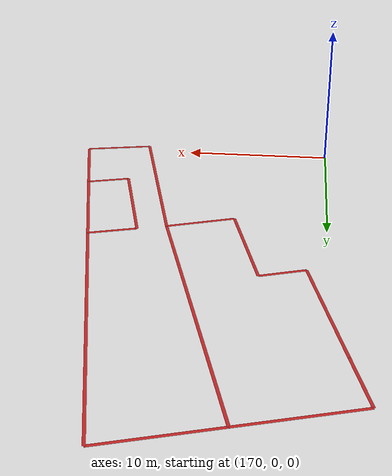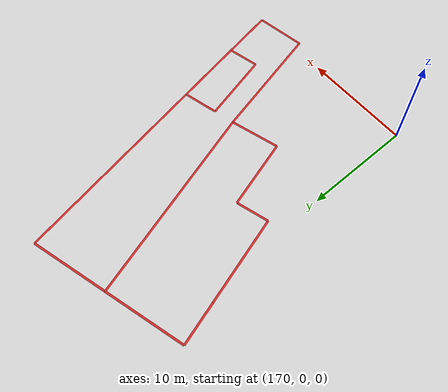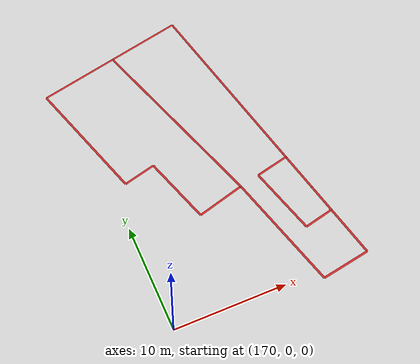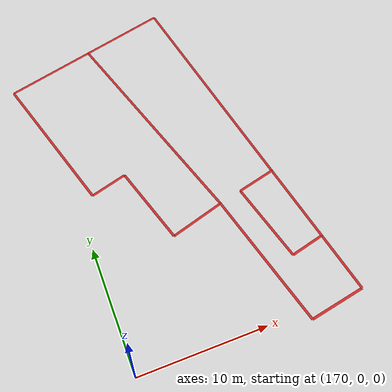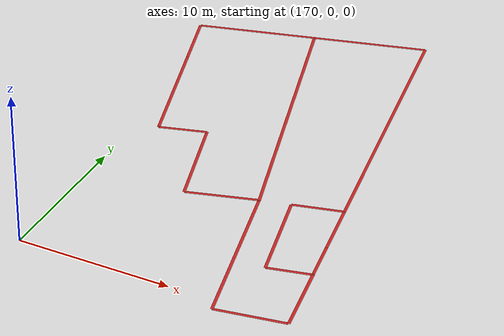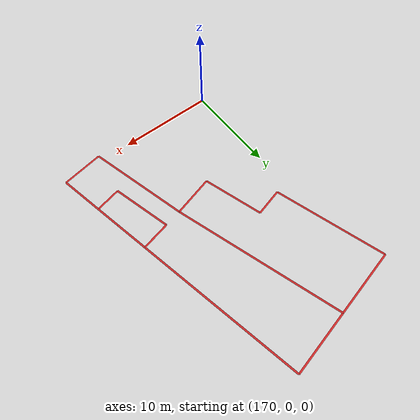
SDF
<sdf version="1.4">
 <world name="default">
  <include><uri>model://sun</uri></include>
  <model name="office_building_179437791">
   <static>true</static>
   <pose>185.864565066 10.892280764 0.0 0 0 0</pose>
   <link name="office_building_179437791_0">
    <collision name="office_building_179437791_0">
     <geometry><box><size>4.86724777461 0.2 0</size></box></geometry>
    </collision>
    <visual name="office_building_179437791_0">
     <geometry><box><size>4.86724777461 0.2 0</size></box></geometry>
     <material>
      <script><uri>file://media/materials/scripts/gazebo.material</uri><name>Gazebo/Red</name></script>
     </material>
    </visual>
    <pose>1.45440945222 -8.44349080473 0 0 0 -1.40092393222</pose>
   </link>
   <link name="office_building_179437791_1">
    <collision name="office_building_179437791_1">
     <geometry><box><size>2.81594639539 0.2 0</size></box></geometry>
    </collision>
    <visual name="office_building_179437791_1">
     <geometry><box><size>2.81594639539 0.2 0</size></box></geometry>
     <material>
      <script><uri>file://media/materials/scripts/gazebo.material</uri><name>Gazebo/Red</name></script>
     </material>
    </visual>
    <pose>0.803921833473 -4.65736718085 0 0 0 -1.40017419619</pose>
   </link>
   <link name="office_building_179437791_2">
    <collision name="office_building_179437791_2">
     <geometry><box><size>3.84254284173 0.2 0</size></box></geometry>
    </collision>
    <visual name="office_building_179437791_2">
     <geometry><box><size>3.84254284173 0.2 0</size></box></geometry>
     <material>
      <script><uri>file://media/materials/scripts/gazebo.material</uri><name>Gazebo/Red</name></script>
     </material>
    </visual>
    <pose>0.236832667611 -1.37677620253 0 0 0 -1.39922423585</pose>
   </link>
   <link name="office_building_179437791_3">
    <collision name="office_building_179437791_3">
     <geometry><box><size>19.4053980841 0.2 0</size></box></geometry>
    </collision>
    <visual name="office_building_179437791_3">
     <geometry><box><size>19.4053980841 0.2 0</size></box></geometry>
     <material>
      <script><uri>file://media/materials/scripts/gazebo.material</uri><name>Gazebo/Red</name></script>
     </material>
    </visual>
    <pose>-1.73683662738 10.0784101586 0 0 0 -1.40036524649</pose>
   </link>
  </model>
  <model name="office_building_179437787">
   <static>true</static>
   <pose>182.416416585 12.8269440245 0.0 0 0 0</pose>
   <link name="office_building_179437787_0">
    <collision name="office_building_179437787_0">
     <geometry><box><size>19.1822546283 0.2 0</size></box></geometry>
    </collision>
    <visual name="office_building_179437787_0">
     <geometry><box><size>19.1822546283 0.2 0</size></box></geometry>
     <material>
      <script><uri>file://media/materials/scripts/gazebo.material</uri><name>Gazebo/Red</name></script>
     </material>
    </visual>
    <pose>-4.42109496457 6.54470639327 0 0 0 1.85336221412</pose>
   </link>
   <link name="office_building_179437787_1">
    <collision name="office_building_179437787_1">
     <geometry><box><size>11.1745416815 0.2 0</size></box></geometry>
    </collision>
    <visual name="office_building_179437787_1">
     <geometry><box><size>11.1745416815 0.2 0</size></box></geometry>
     <material>
      <script><uri>file://media/materials/scripts/gazebo.material</uri><name>Gazebo/Red</name></script>
     </material>
    </visual>
    <pose>-0.468153291477 -8.10504030523 0 0 0 1.80170903173</pose>
   </link>
   <link name="office_building_179437787_2">
    <collision name="office_building_179437787_2">
     <geometry><box><size>4.56828808795 0.2 0</size></box></geometry>
    </collision>
    <visual name="office_building_179437787_2">
     <geometry><box><size>4.56828808795 0.2 0</size></box></geometry>
     <material>
      <script><uri>file://media/materials/scripts/gazebo.material</uri><name>Gazebo/Red</name></script>
     </material>
    </visual>
    <pose>3.06228082802 -13.1603812673 0 0 0 -2.97283842584</pose>
   </link>
   <link name="office_building_179437787_3">
    <collision name="office_building_179437787_3">
     <geometry><box><size>4.86724777461 0.2 0</size></box></geometry>
    </collision>
    <visual name="office_building_179437787_3">
     <geometry><box><size>4.86724777461 0.2 0</size></box></geometry>
     <material>
      <script><uri>file://media/materials/scripts/gazebo.material</uri><name>Gazebo/Red</name></script>
     </material>
    </visual>
    <pose>4.90255793288 -10.3781540652 0 0 0 -1.40092393222</pose>
   </link>
   <link name="office_building_179437787_4">
    <collision name="office_building_179437787_4">
     <geometry><box><size>2.85380220917 0.2 0</size></box></geometry>
    </collision>
    <visual name="office_building_179437787_4">
     <geometry><box><size>2.85380220917 0.2 0</size></box></geometry>
     <material>
      <script><uri>file://media/materials/scripts/gazebo.material</uri><name>Gazebo/Red</name></script>
     </material>
    </visual>
    <pose>3.10120094244 -8.30223878961 0 0 0 0.228113525261</pose>
   </link>
   <link name="office_building_179437787_5">
    <collision name="office_building_179437787_5">
     <geometry><box><size>6.59609199918 0.2 0</size></box></geometry>
    </collision>
    <visual name="office_building_179437787_5">
     <geometry><box><size>6.59609199918 0.2 0</size></box></geometry>
     <material>
      <script><uri>file://media/materials/scripts/gazebo.material</uri><name>Gazebo/Red</name></script>
     </material>
    </visual>
    <pose>0.949583263938 -5.41603260594 0 0 0 -1.33774326436</pose>
   </link>
   <link name="office_building_179437787_6">
    <collision name="office_building_179437787_6">
     <geometry><box><size>3.26574339079 0.2 0</size></box></geometry>
    </collision>
    <visual name="office_building_179437787_6">
     <geometry><box><size>3.26574339079 0.2 0</size></box></geometry>
     <material>
      <script><uri>file://media/materials/scripts/gazebo.material</uri><name>Gazebo/Red</name></script>
     </material>
    </visual>
    <pose>1.77243095292 -1.8127617525 0 0 0 -2.89765213866</pose>
   </link>
   <link name="office_building_179437787_7">
    <collision name="office_building_179437787_7">
     <geometry><box><size>19.4053980841 0.2 0</size></box></geometry>
    </collision>
    <visual name="office_building_179437787_7">
     <geometry><box><size>19.4053980841 0.2 0</size></box></geometry>
     <material>
      <script><uri>file://media/materials/scripts/gazebo.material</uri><name>Gazebo/Red</name></script>
     </material>
    </visual>
    <pose>1.71131185329 8.14374689811 0 0 0 -1.40036524649</pose>
   </link>
   <link name="office_building_179437787_8">
    <collision name="office_building_179437787_8">
     <geometry><box><size>7.42182115067 0.2 0</size></box></geometry>
    </collision>
    <visual name="office_building_179437787_8">
     <geometry><box><size>7.42182115067 0.2 0</size></box></geometry>
     <material>
      <script><uri>file://media/materials/scripts/gazebo.material</uri><name>Gazebo/Red</name></script>
     </material>
    </visual>
    <pose>-3.51481775881 16.7306754162 0 0 0 0.265914138923</pose>
   </link>
  </model>
  <model name="office_building_179437785">
   <static>true</static>
   <pose>173.754622702 19.3851087266 0.0 0 0 0</pose>
   <link name="office_building_179437785_0">
    <collision name="office_building_179437785_0">
     <geometry><box><size>7.75556632993 0.2 0</size></box></geometry>
    </collision>
    <visual name="office_building_179437785_0">
     <geometry><box><size>7.75556632993 0.2 0</size></box></geometry>
     <material>
      <script><uri>file://media/materials/scripts/gazebo.material</uri><name>Gazebo/Red</name></script>
     </material>
    </visual>
    <pose>-2.17522037842 8.17909395802 0 0 0 0.265693217738</pose>
   </link>
   <link name="office_building_179437785_1">
    <collision name="office_building_179437785_1">
     <geometry><box><size>4.09993954001 0.2 0</size></box></geometry>
    </collision>
    <visual name="office_building_179437785_1">
     <geometry><box><size>4.09993954001 0.2 0</size></box></geometry>
     <material>
      <script><uri>file://media/materials/scripts/gazebo.material</uri><name>Gazebo/Red</name></script>
     </material>
    </visual>
    <pose>-5.34429000829 5.19250928388 0 0 0 1.85390621417</pose>
   </link>
   <link name="office_building_179437785_2">
    <collision name="office_building_179437785_2">
     <geometry><box><size>8.51080549568 0.2 0</size></box></geometry>
    </collision>
    <visual name="office_building_179437785_2">
     <geometry><box><size>8.51080549568 0.2 0</size></box></geometry>
     <material>
      <script><uri>file://media/materials/scripts/gazebo.material</uri><name>Gazebo/Red</name></script>
     </material>
    </visual>
    <pose>-3.58743324965 -0.863162959192 0 0 0 1.85280374029</pose>
   </link>
   <link name="office_building_179437785_3">
    <collision name="office_building_179437785_3">
     <geometry><box><size>3.11444468526 0.2 0</size></box></geometry>
    </collision>
    <visual name="office_building_179437785_3">
     <geometry><box><size>3.11444468526 0.2 0</size></box></geometry>
     <material>
      <script><uri>file://media/materials/scripts/gazebo.material</uri><name>Gazebo/Red</name></script>
     </material>
    </visual>
    <pose>-0.907648400689 -4.51664832209 0 0 0 -2.85926895181</pose>
   </link>
   <link name="office_building_179437785_4">
    <collision name="office_building_179437785_4">
     <geometry><box><size>6.70478799341 0.2 0</size></box></geometry>
    </collision>
    <visual name="office_building_179437785_4">
     <geometry><box><size>6.70478799341 0.2 0</size></box></geometry>
     <material>
      <script><uri>file://media/materials/scripts/gazebo.material</uri><name>Gazebo/Red</name></script>
     </material>
    </visual>
    <pose>1.52195470992 -7.30247268997 0 0 0 1.85314892952</pose>
   </link>
   <link name="office_building_179437785_5">
    <collision name="office_building_179437785_5">
     <geometry><box><size>4.64397161912 0.2 0</size></box></geometry>
    </collision>
    <visual name="office_building_179437785_5">
     <geometry><box><size>4.64397161912 0.2 0</size></box></geometry>
     <material>
      <script><uri>file://media/materials/scripts/gazebo.material</uri><name>Gazebo/Red</name></script>
     </material>
    </visual>
    <pose>4.68544428489 -9.8731763379 0 0 0 -2.85834207458</pose>
   </link>
   <link name="office_building_179437785_6">
    <collision name="office_building_179437785_6">
     <geometry><box><size>19.1822546283 0.2 0</size></box></geometry>
    </collision>
    <visual name="office_building_179437785_6">
     <geometry><box><size>19.1822546283 0.2 0</size></box></geometry>
     <material>
      <script><uri>file://media/materials/scripts/gazebo.material</uri><name>Gazebo/Red</name></script>
     </material>
    </visual>
    <pose>4.24069891815 -0.013458308857 0 0 0 -1.28823043947</pose>
   </link>
  </model>
 </world>
</sdf>
